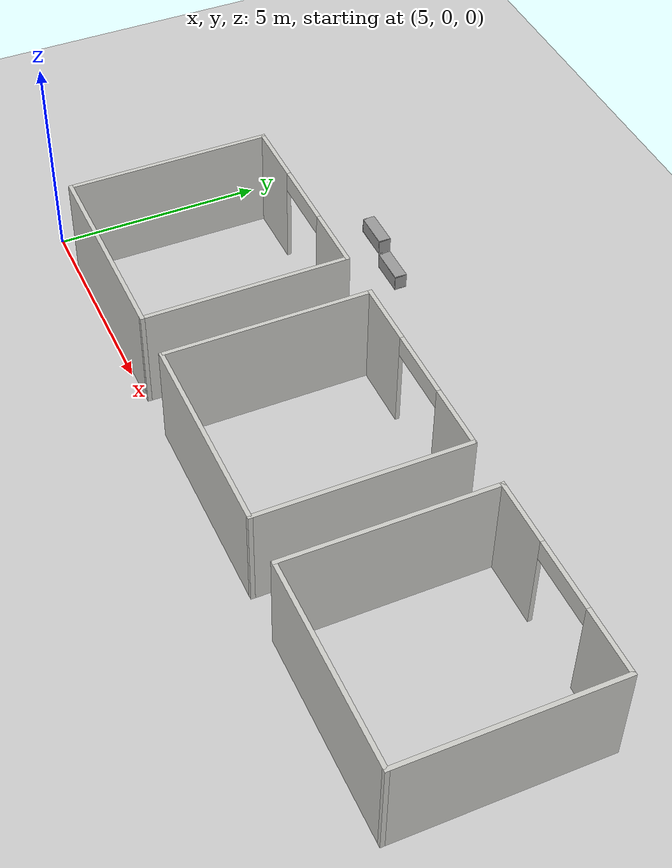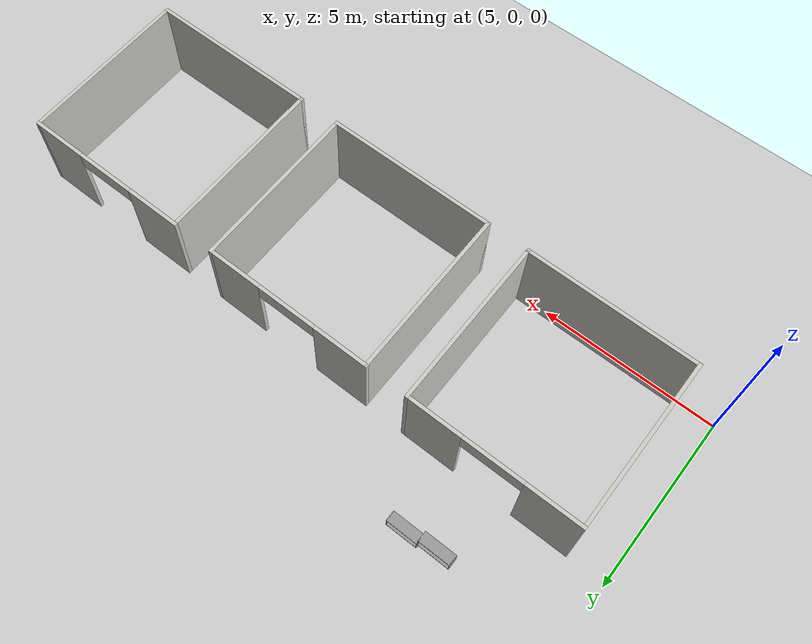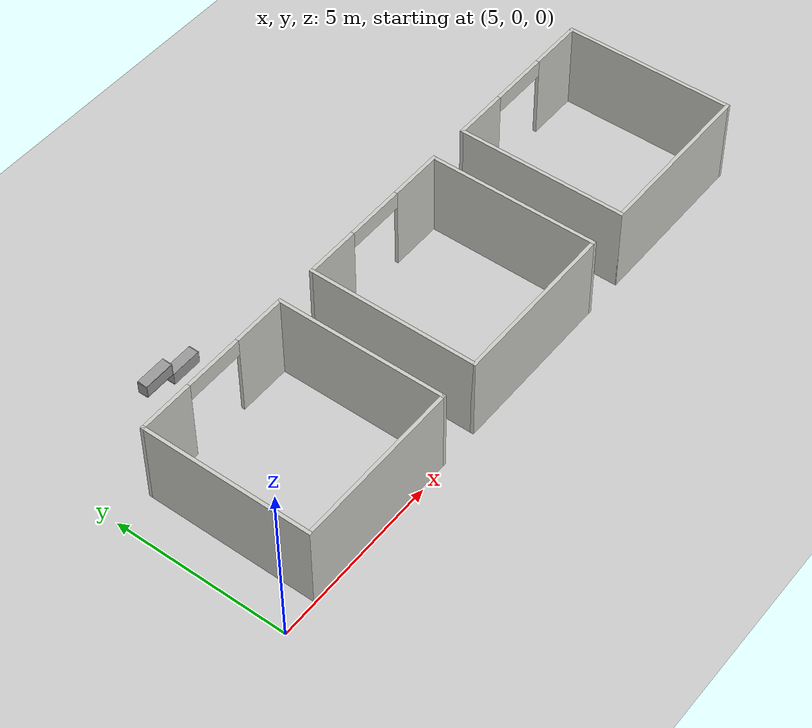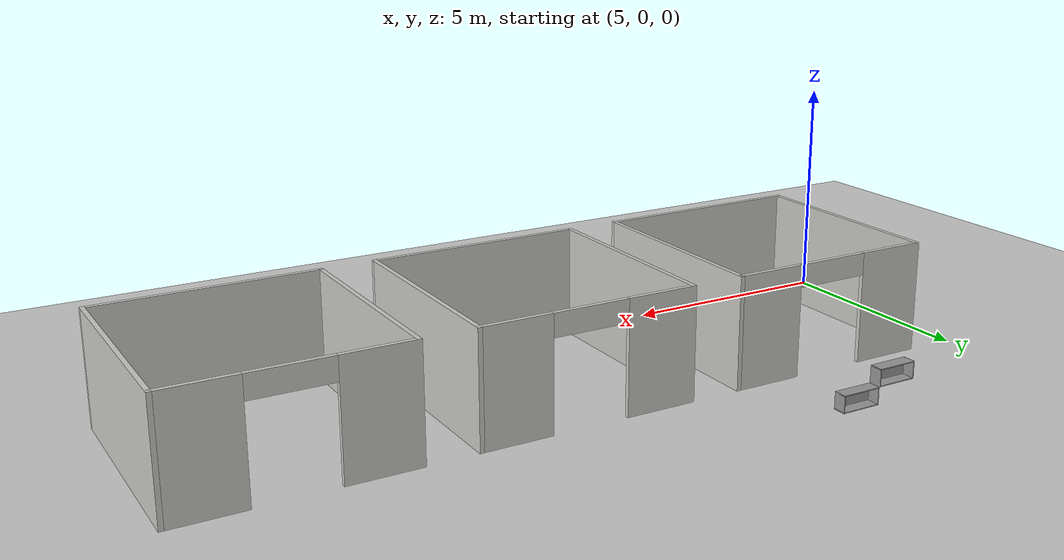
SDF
<sdf version="1.6">
 <world name="default">
  <model name="ground_plane">
   <static>1</static>
   <link name="link">
    <collision name="collision">
     <geometry><plane><normal>0 0 1</normal><size>100 100</size></plane></geometry>
     <surface><friction><ode><mu>100</mu><mu2>50</mu2></ode></friction></surface>
    </collision>
    <visual name="visual">
     <cast_shadows>0</cast_shadows>
     <geometry><plane><normal>0 0 1</normal><size>100 100</size></plane></geometry>
     <material>
      <script><uri>file://media/materials/scripts/gazebo.material</uri><name>Gazebo/Grey</name></script>
     </material>
    </visual>
   </link>
  </model>
  <model name="Wall_Cabinet_36x15W_1">
   <link name="Wall_0">
    <pose>0 0 0.01 0 -0 0</pose>
    <inertial>
     <mass>1.9796</mass>
     <inertia><ixx>0.0145</ixx><iyy>0.1511</iyy><izz>0.1367</izz><ixy>0</ixy><ixz>0</ixz><iyz>0</iyz></inertia>
    </inertial>
    <collision name="Wall_0_Collision"><geometry><box><size>0.91 0.296 0.02</size></box></geometry></collision>
    <visual name="Wall_0_Visual">
     <geometry><box><size>0.91 0.296 0.02</size></box></geometry>
     <material>
      <script><uri>file://media/materials/scripts/gazebo.material</uri><name>Gazebo/Grey</name></script>
      <ambient>1 1 1 1</ambient>
     </material>
    </visual>
   </link>
   <joint name="0_2" type="fixed">
    <pose>-0.455 0 0 0 -0 0</pose>
    <parent>Wall_2</parent>
    <child>Wall_0</child>
    <axis>
     <xyz>0 0 1</xyz>
     <use_parent_model_frame>0</use_parent_model_frame>
     <limit><lower>-1e+16</lower><upper>1e+16</upper></limit>
    </axis>
   </joint>
   <joint name="0_4" type="fixed">
    <pose>0.455 0 0 0 -0 0</pose>
    <parent>Wall_4</parent>
    <child>Wall_0</child>
    <axis>
     <xyz>0 0 1</xyz>
     <use_parent_model_frame>0</use_parent_model_frame>
     <limit><lower>-1e+16</lower><upper>1e+16</upper></limit>
    </axis>
   </joint>
   <joint name="0_8" type="fixed">
    <pose>0 -0.148 0 0 -0 0</pose>
    <parent>Wall_8</parent>
    <child>Wall_0</child>
    <axis>
     <xyz>0 0 1</xyz>
     <use_parent_model_frame>0</use_parent_model_frame>
     <limit><lower>-1e+16</lower><upper>1e+16</upper></limit>
    </axis>
   </joint>
   <link name="Wall_2">
    <pose>-0.445 0 0.192 0 -0 0</pose>
    <inertial>
     <mass>0.8353</mass>
     <inertia><ixx>0.0061</ixx><iyy>0.0164</iyy><izz>0.0103</izz><ixy>0</ixy><ixz>0</ixz><iyz>0</iyz></inertia>
    </inertial>
    <collision name="Wall_2_Collision"><geometry><box><size>0.02 0.296 0.384</size></box></geometry></collision>
    <visual name="Wall_2_Visual">
     <geometry><box><size>0.02 0.296 0.384</size></box></geometry>
     <material>
      <script><uri>file://media/materials/scripts/gazebo.material</uri><name>Gazebo/Grey</name></script>
      <ambient>1 1 1 1</ambient>
     </material>
    </visual>
   </link>
   <link name="Wall_4">
    <pose>0.445 0 0.192 0 -0 0</pose>
    <inertial>
     <mass>0.8353</mass>
     <inertia><ixx>0.0061</ixx><iyy>0.0164</iyy><izz>0.0103</izz><ixy>0</ixy><ixz>0</ixz><iyz>0</iyz></inertia>
    </inertial>
    <collision name="Wall_4_Collision"><geometry><box><size>0.02 0.296 0.384</size></box></geometry></collision>
    <visual name="Wall_4_Visual">
     <geometry><box><size>0.02 0.296 0.384</size></box></geometry>
     <material>
      <script><uri>file://media/materials/scripts/gazebo.material</uri><name>Gazebo/Grey</name></script>
      <ambient>1 1 1 1</ambient>
     </material>
    </visual>
   </link>
   <link name="Wall_6">
    <pose>0 0 0.374 0 -0 0</pose>
    <inertial>
     <mass>1.9796</mass>
     <inertia><ixx>0.0145</ixx><iyy>0.1511</iyy><izz>0.1367</izz><ixy>0</ixy><ixz>0</ixz><iyz>0</iyz></inertia>
    </inertial>
    <collision name="Wall_6_Collision"><geometry><box><size>0.91 0.296 0.02</size></box></geometry></collision>
    <visual name="Wall_6_Visual">
     <geometry><box><size>0.91 0.296 0.02</size></box></geometry>
     <material>
      <script><uri>file://media/materials/scripts/gazebo.material</uri><name>Gazebo/Grey</name></script>
      <ambient>1 1 1 1</ambient>
     </material>
    </visual>
   </link>
   <joint name="6_2" type="fixed">
    <pose>-0.455 0 0 0 -0 0</pose>
    <parent>Wall_2</parent>
    <child>Wall_6</child>
    <axis>
     <xyz>0 0 1</xyz>
     <use_parent_model_frame>0</use_parent_model_frame>
     <limit><lower>-1e+16</lower><upper>1e+16</upper></limit>
    </axis>
   </joint>
   <joint name="6_4" type="fixed">
    <pose>0.455 0 0 0 -0 0</pose>
    <parent>Wall_4</parent>
    <child>Wall_6</child>
    <axis>
     <xyz>0 0 1</xyz>
     <use_parent_model_frame>0</use_parent_model_frame>
     <limit><lower>-1e+16</lower><upper>1e+16</upper></limit>
    </axis>
   </joint>
   <joint name="6_8" type="fixed">
    <pose>0 -0.148 0 0 -0 0</pose>
    <parent>Wall_8</parent>
    <child>Wall_6</child>
    <axis>
     <xyz>0 0 1</xyz>
     <use_parent_model_frame>0</use_parent_model_frame>
     <limit><lower>-1e+16</lower><upper>1e+16</upper></limit>
    </axis>
   </joint>
   <link name="Wall_8">
    <pose>0 -0.138 0.19 0 -0 0</pose>
    <inertial>
     <mass>2.5302</mass>
     <inertia><ixx>0.0305</ixx><iyy>0.1732</iyy><izz>0.2035</izz><ixy>0</ixy><ixz>0</ixz><iyz>0</iyz></inertia>
    </inertial>
    <collision name="Wall_8_Collision"><geometry><box><size>0.906 0.02 0.38</size></box></geometry></collision>
    <visual name="Wall_8_Visual">
     <geometry><box><size>0.906 0.02 0.38</size></box></geometry>
     <material>
      <script><uri>file://media/materials/scripts/gazebo.material</uri><name>Gazebo/Grey</name></script>
      <ambient>1 1 1 1</ambient>
     </material>
    </visual>
   </link>
   <joint name="8_2" type="fixed">
    <pose>-0.453 0 0 0 -0 0</pose>
    <parent>Wall_2</parent>
    <child>Wall_8</child>
    <axis>
     <xyz>0 1 0</xyz>
     <use_parent_model_frame>0</use_parent_model_frame>
     <limit><lower>-1e+16</lower><upper>1e+16</upper></limit>
    </axis>
   </joint>
   <joint name="8_4" type="fixed">
    <pose>0.453 0 0 0 -0 0</pose>
    <parent>Wall_4</parent>
    <child>Wall_8</child>
    <axis>
     <xyz>0 1 0</xyz>
     <use_parent_model_frame>0</use_parent_model_frame>
     <limit><lower>-1e+16</lower><upper>1e+16</upper></limit>
    </axis>
   </joint>
   <static>1</static>
   <pose>9.37548 6.83772 0 0 -0 0</pose>
  </model>
  <model name="Wall_Cabinet_36x15W_3">
   <link name="Wall_0">
    <pose>0 0 0.01 0 -0 0</pose>
    <inertial>
     <mass>1.9796</mass>
     <inertia><ixx>0.0145</ixx><iyy>0.1511</iyy><izz>0.1367</izz><ixy>0</ixy><ixz>0</ixz><iyz>0</iyz></inertia>
    </inertial>
    <collision name="Wall_0_Collision"><geometry><box><size>0.91 0.296 0.02</size></box></geometry></collision>
    <visual name="Wall_0_Visual">
     <geometry><box><size>0.91 0.296 0.02</size></box></geometry>
     <material>
      <script><uri>file://media/materials/scripts/gazebo.material</uri><name>Gazebo/Grey</name></script>
      <ambient>1 1 1 1</ambient>
     </material>
    </visual>
   </link>
   <joint name="0_2" type="fixed">
    <pose>-0.455 0 0 0 -0 0</pose>
    <parent>Wall_2</parent>
    <child>Wall_0</child>
    <axis>
     <xyz>0 0 1</xyz>
     <use_parent_model_frame>0</use_parent_model_frame>
     <limit><lower>-1e+16</lower><upper>1e+16</upper></limit>
    </axis>
   </joint>
   <joint name="0_4" type="fixed">
    <pose>0.455 0 0 0 -0 0</pose>
    <parent>Wall_4</parent>
    <child>Wall_0</child>
    <axis>
     <xyz>0 0 1</xyz>
     <use_parent_model_frame>0</use_parent_model_frame>
     <limit><lower>-1e+16</lower><upper>1e+16</upper></limit>
    </axis>
   </joint>
   <joint name="0_8" type="fixed">
    <pose>0 -0.148 0 0 -0 0</pose>
    <parent>Wall_8</parent>
    <child>Wall_0</child>
    <axis>
     <xyz>0 0 1</xyz>
     <use_parent_model_frame>0</use_parent_model_frame>
     <limit><lower>-1e+16</lower><upper>1e+16</upper></limit>
    </axis>
   </joint>
   <link name="Wall_2">
    <pose>-0.445 0 0.192 0 -0 0</pose>
    <inertial>
     <mass>0.8353</mass>
     <inertia><ixx>0.0061</ixx><iyy>0.0164</iyy><izz>0.0103</izz><ixy>0</ixy><ixz>0</ixz><iyz>0</iyz></inertia>
    </inertial>
    <collision name="Wall_2_Collision"><geometry><box><size>0.02 0.296 0.384</size></box></geometry></collision>
    <visual name="Wall_2_Visual">
     <geometry><box><size>0.02 0.296 0.384</size></box></geometry>
     <material>
      <script><uri>file://media/materials/scripts/gazebo.material</uri><name>Gazebo/Grey</name></script>
      <ambient>1 1 1 1</ambient>
     </material>
    </visual>
   </link>
   <link name="Wall_4">
    <pose>0.445 0 0.192 0 -0 0</pose>
    <inertial>
     <mass>0.8353</mass>
     <inertia><ixx>0.0061</ixx><iyy>0.0164</iyy><izz>0.0103</izz><ixy>0</ixy><ixz>0</ixz><iyz>0</iyz></inertia>
    </inertial>
    <collision name="Wall_4_Collision"><geometry><box><size>0.02 0.296 0.384</size></box></geometry></collision>
    <visual name="Wall_4_Visual">
     <geometry><box><size>0.02 0.296 0.384</size></box></geometry>
     <material>
      <script><uri>file://media/materials/scripts/gazebo.material</uri><name>Gazebo/Grey</name></script>
      <ambient>1 1 1 1</ambient>
     </material>
    </visual>
   </link>
   <link name="Wall_6">
    <pose>0 0 0.374 0 -0 0</pose>
    <inertial>
     <mass>1.9796</mass>
     <inertia><ixx>0.0145</ixx><iyy>0.1511</iyy><izz>0.1367</izz><ixy>0</ixy><ixz>0</ixz><iyz>0</iyz></inertia>
    </inertial>
    <collision name="Wall_6_Collision"><geometry><box><size>0.91 0.296 0.02</size></box></geometry></collision>
    <visual name="Wall_6_Visual">
     <geometry><box><size>0.91 0.296 0.02</size></box></geometry>
     <material>
      <script><uri>file://media/materials/scripts/gazebo.material</uri><name>Gazebo/Grey</name></script>
      <ambient>1 1 1 1</ambient>
     </material>
    </visual>
   </link>
   <joint name="6_2" type="fixed">
    <pose>-0.455 0 0 0 -0 0</pose>
    <parent>Wall_2</parent>
    <child>Wall_6</child>
    <axis>
     <xyz>0 0 1</xyz>
     <use_parent_model_frame>0</use_parent_model_frame>
     <limit><lower>-1e+16</lower><upper>1e+16</upper></limit>
    </axis>
   </joint>
   <joint name="6_4" type="fixed">
    <pose>0.455 0 0 0 -0 0</pose>
    <parent>Wall_4</parent>
    <child>Wall_6</child>
    <axis>
     <xyz>0 0 1</xyz>
     <use_parent_model_frame>0</use_parent_model_frame>
     <limit><lower>-1e+16</lower><upper>1e+16</upper></limit>
    </axis>
   </joint>
   <joint name="6_8" type="fixed">
    <pose>0 -0.148 0 0 -0 0</pose>
    <parent>Wall_8</parent>
    <child>Wall_6</child>
    <axis>
     <xyz>0 0 1</xyz>
     <use_parent_model_frame>0</use_parent_model_frame>
     <limit><lower>-1e+16</lower><upper>1e+16</upper></limit>
    </axis>
   </joint>
   <link name="Wall_8">
    <pose>0 -0.138 0.19 0 -0 0</pose>
    <inertial>
     <mass>2.5302</mass>
     <inertia><ixx>0.0305</ixx><iyy>0.1732</iyy><izz>0.2035</izz><ixy>0</ixy><ixz>0</ixz><iyz>0</iyz></inertia>
    </inertial>
    <collision name="Wall_8_Collision"><geometry><box><size>0.906 0.02 0.38</size></box></geometry></collision>
    <visual name="Wall_8_Visual">
     <geometry><box><size>0.906 0.02 0.38</size></box></geometry>
     <material>
      <script><uri>file://media/materials/scripts/gazebo.material</uri><name>Gazebo/Grey</name></script>
      <ambient>1 1 1 1</ambient>
     </material>
    </visual>
   </link>
   <joint name="8_2" type="fixed">
    <pose>-0.453 0 0 0 -0 0</pose>
    <parent>Wall_2</parent>
    <child>Wall_8</child>
    <axis>
     <xyz>0 1 0</xyz>
     <use_parent_model_frame>0</use_parent_model_frame>
     <limit><lower>-1e+16</lower><upper>1e+16</upper></limit>
    </axis>
   </joint>
   <joint name="8_4" type="fixed">
    <pose>0.453 0 0 0 -0 0</pose>
    <parent>Wall_4</parent>
    <child>Wall_8</child>
    <axis>
     <xyz>0 1 0</xyz>
     <use_parent_model_frame>0</use_parent_model_frame>
     <limit><lower>-1e+16</lower><upper>1e+16</upper></limit>
    </axis>
   </joint>
   <static>1</static>
   <pose>8.45583 6.84176 0.387838 0 -0 0</pose>
  </model>
  <model name="room_wall_6">
   <pose>20.5 2.50001 0 0 -0 1.5708</pose>
   <link name="Wall_21">
    <collision name="Wall_21_Collision">
     <geometry><box><size>4.9 0.1 2.5</size></box></geometry>
     <pose>0 0 1.25 0 -0 0</pose>
    </collision>
    <visual name="Wall_21_Visual">
     <pose>0 0 1.25 0 -0 0</pose>
     <geometry><box><size>4.9 0.1 2.5</size></box></geometry>
     <material>
      <script><uri>file://media/materials/scripts/gazebo.material</uri><name>Gazebo/CeilingTiled</name></script>
      <ambient>1 0.764706 0.305882 1</ambient>
     </material>
     <meta><layer>0</layer></meta>
    </visual>
    <pose>0 2.4 0 0 -0 0</pose>
   </link>
   <link name="Wall_22">
    <pose>2.4 0 0 0 0 -1.5708</pose>
    <visual name="Wall_22_Visual_0">
     <pose>-1.64961 0 1.25 0 -0 0</pose>
     <geometry><box><size>1.60079 0.1 2.5</size></box></geometry>
     <material>
      <script><uri>file://media/materials/scripts/gazebo.material</uri><name>Gazebo/CeilingTiled</name></script>
      <ambient>1 0.764706 0.305882 1</ambient>
     </material>
     <meta><layer>0</layer></meta>
    </visual>
    <collision name="Wall_22_Collision_0">
     <geometry><box><size>1.60079 0.1 2.5</size></box></geometry>
     <pose>-1.64961 0 1.25 0 -0 0</pose>
    </collision>
    <visual name="Wall_22_Visual_1">
     <pose>1.65039 0 1.25 0 -0 0</pose>
     <geometry><box><size>1.59921 0.1 2.5</size></box></geometry>
     <material>
      <script><uri>file://media/materials/scripts/gazebo.material</uri><name>Gazebo/CeilingTiled</name></script>
      <ambient>1 0.764706 0.305882 1</ambient>
     </material>
     <meta><layer>0</layer></meta>
    </visual>
    <collision name="Wall_22_Collision_1">
     <geometry><box><size>1.59921 0.1 2.5</size></box></geometry>
     <pose>1.65039 0 1.25 0 -0 0</pose>
    </collision>
    <visual name="Wall_22_Visual_2">
     <pose>0.000786 0 2.25 0 -0 0</pose>
     <geometry><box><size>1.7 0.1 0.5</size></box></geometry>
     <material>
      <script><uri>file://media/materials/scripts/gazebo.material</uri><name>Gazebo/CeilingTiled</name></script>
      <ambient>1 0.764706 0.305882 1</ambient>
     </material>
     <meta><layer>0</layer></meta>
    </visual>
    <collision name="Wall_22_Collision_2">
     <geometry><box><size>1.7 0.1 0.5</size></box></geometry>
     <pose>0.000786 0 2.25 0 -0 0</pose>
    </collision>
   </link>
   <link name="Wall_23">
    <collision name="Wall_23_Collision">
     <geometry><box><size>4.9 0.1 2.5</size></box></geometry>
     <pose>0 0 1.25 0 -0 0</pose>
    </collision>
    <visual name="Wall_23_Visual">
     <pose>0 0 1.25 0 -0 0</pose>
     <geometry><box><size>4.9 0.1 2.5</size></box></geometry>
     <material>
      <script><uri>file://media/materials/scripts/gazebo.material</uri><name>Gazebo/CeilingTiled</name></script>
      <ambient>1 0.764706 0.305882 1</ambient>
     </material>
     <meta><layer>0</layer></meta>
    </visual>
    <pose>0 -2.4 0 0 -0 3.14159</pose>
   </link>
   <link name="Wall_24">
    <collision name="Wall_24_Collision">
     <geometry><box><size>4.9 0.1 2.5</size></box></geometry>
     <pose>0 0 1.25 0 -0 0</pose>
    </collision>
    <visual name="Wall_24_Visual">
     <pose>0 0 1.25 0 -0 0</pose>
     <geometry><box><size>4.9 0.1 2.5</size></box></geometry>
     <material>
      <script><uri>file://media/materials/scripts/gazebo.material</uri><name>Gazebo/CeilingTiled</name></script>
      <ambient>1 0.764706 0.305882 1</ambient>
     </material>
     <meta><layer>0</layer></meta>
    </visual>
    <pose>-2.4 0 0 0 -0 1.5708</pose>
   </link>
   <static>1</static>
  </model>
  <model name="room_wall_7">
   <pose>8.5 2.5 0 0 -0 1.57079</pose>
   <link name="Wall_21">
    <collision name="Wall_21_Collision">
     <geometry><box><size>4.9 0.1 2.5</size></box></geometry>
     <pose>0 0 1.25 0 -0 0</pose>
    </collision>
    <visual name="Wall_21_Visual">
     <pose>0 0 1.25 0 -0 0</pose>
     <geometry><box><size>4.9 0.1 2.5</size></box></geometry>
     <material>
      <script><uri>file://media/materials/scripts/gazebo.material</uri><name>Gazebo/CeilingTiled</name></script>
      <ambient>1 0.764706 0.305882 1</ambient>
     </material>
     <meta><layer>0</layer></meta>
    </visual>
    <pose>0 2.4 0 0 -0 0</pose>
   </link>
   <link name="Wall_22">
    <pose>2.4 0 0 0 0 -1.5708</pose>
    <visual name="Wall_22_Visual_0">
     <pose>-1.64961 0 1.25 0 -0 0</pose>
     <geometry><box><size>1.60079 0.1 2.5</size></box></geometry>
     <material>
      <script><uri>file://media/materials/scripts/gazebo.material</uri><name>Gazebo/CeilingTiled</name></script>
      <ambient>1 0.764706 0.305882 1</ambient>
     </material>
     <meta><layer>0</layer></meta>
    </visual>
    <collision name="Wall_22_Collision_0">
     <geometry><box><size>1.60079 0.1 2.5</size></box></geometry>
     <pose>-1.64961 0 1.25 0 -0 0</pose>
    </collision>
    <visual name="Wall_22_Visual_1">
     <pose>1.65039 0 1.25 0 -0 0</pose>
     <geometry><box><size>1.59921 0.1 2.5</size></box></geometry>
     <material>
      <script><uri>file://media/materials/scripts/gazebo.material</uri><name>Gazebo/CeilingTiled</name></script>
      <ambient>1 0.764706 0.305882 1</ambient>
     </material>
     <meta><layer>0</layer></meta>
    </visual>
    <collision name="Wall_22_Collision_1">
     <geometry><box><size>1.59921 0.1 2.5</size></box></geometry>
     <pose>1.65039 0 1.25 0 -0 0</pose>
    </collision>
    <visual name="Wall_22_Visual_2">
     <pose>0.000786 0 2.25 0 -0 0</pose>
     <geometry><box><size>1.7 0.1 0.5</size></box></geometry>
     <material>
      <script><uri>file://media/materials/scripts/gazebo.material</uri><name>Gazebo/CeilingTiled</name></script>
      <ambient>1 0.764706 0.305882 1</ambient>
     </material>
     <meta><layer>0</layer></meta>
    </visual>
    <collision name="Wall_22_Collision_2">
     <geometry><box><size>1.7 0.1 0.5</size></box></geometry>
     <pose>0.000786 0 2.25 0 -0 0</pose>
    </collision>
   </link>
   <link name="Wall_23">
    <collision name="Wall_23_Collision">
     <geometry><box><size>4.9 0.1 2.5</size></box></geometry>
     <pose>0 0 1.25 0 -0 0</pose>
    </collision>
    <visual name="Wall_23_Visual">
     <pose>0 0 1.25 0 -0 0</pose>
     <geometry><box><size>4.9 0.1 2.5</size></box></geometry>
     <material>
      <script><uri>file://media/materials/scripts/gazebo.material</uri><name>Gazebo/CeilingTiled</name></script>
      <ambient>1 0.764706 0.305882 1</ambient>
     </material>
     <meta><layer>0</layer></meta>
    </visual>
    <pose>0 -2.4 0 0 -0 3.14159</pose>
   </link>
   <link name="Wall_24">
    <collision name="Wall_24_Collision">
     <geometry><box><size>4.9 0.1 2.5</size></box></geometry>
     <pose>0 0 1.25 0 -0 0</pose>
    </collision>
    <visual name="Wall_24_Visual">
     <pose>0 0 1.25 0 -0 0</pose>
     <geometry><box><size>4.9 0.1 2.5</size></box></geometry>
     <material>
      <script><uri>file://media/materials/scripts/gazebo.material</uri><name>Gazebo/CeilingTiled</name></script>
      <ambient>1 0.764706 0.305882 1</ambient>
     </material>
     <meta><layer>0</layer></meta>
    </visual>
    <pose>-2.4 0 0 0 -0 1.5708</pose>
   </link>
   <static>1</static>
  </model>
  <model name="room_wall_8">
   <pose>14.5 2.50001 0 0 -0 1.5708</pose>
   <link name="Wall_21">
    <collision name="Wall_21_Collision">
     <geometry><box><size>4.9 0.1 2.5</size></box></geometry>
     <pose>0 0 1.25 0 -0 0</pose>
    </collision>
    <visual name="Wall_21_Visual">
     <pose>0 0 1.25 0 -0 0</pose>
     <geometry><box><size>4.9 0.1 2.5</size></box></geometry>
     <material>
      <script><uri>file://media/materials/scripts/gazebo.material</uri><name>Gazebo/CeilingTiled</name></script>
      <ambient>1 0.764706 0.305882 1</ambient>
     </material>
     <meta><layer>0</layer></meta>
    </visual>
    <pose>0 2.4 0 0 -0 0</pose>
   </link>
   <link name="Wall_22">
    <pose>2.4 0 0 0 0 -1.5708</pose>
    <visual name="Wall_22_Visual_0">
     <pose>-1.64961 0 1.25 0 -0 0</pose>
     <geometry><box><size>1.60079 0.1 2.5</size></box></geometry>
     <material>
      <script><uri>file://media/materials/scripts/gazebo.material</uri><name>Gazebo/CeilingTiled</name></script>
      <ambient>1 0.764706 0.305882 1</ambient>
     </material>
     <meta><layer>0</layer></meta>
    </visual>
    <collision name="Wall_22_Collision_0">
     <geometry><box><size>1.60079 0.1 2.5</size></box></geometry>
     <pose>-1.64961 0 1.25 0 -0 0</pose>
    </collision>
    <visual name="Wall_22_Visual_1">
     <pose>1.65039 0 1.25 0 -0 0</pose>
     <geometry><box><size>1.59921 0.1 2.5</size></box></geometry>
     <material>
      <script><uri>file://media/materials/scripts/gazebo.material</uri><name>Gazebo/CeilingTiled</name></script>
      <ambient>1 0.764706 0.305882 1</ambient>
     </material>
     <meta><layer>0</layer></meta>
    </visual>
    <collision name="Wall_22_Collision_1">
     <geometry><box><size>1.59921 0.1 2.5</size></box></geometry>
     <pose>1.65039 0 1.25 0 -0 0</pose>
    </collision>
    <visual name="Wall_22_Visual_2">
     <pose>0.000786 0 2.25 0 -0 0</pose>
     <geometry><box><size>1.7 0.1 0.5</size></box></geometry>
     <material>
      <script><uri>file://media/materials/scripts/gazebo.material</uri><name>Gazebo/CeilingTiled</name></script>
      <ambient>1 0.764706 0.305882 1</ambient>
     </material>
     <meta><layer>0</layer></meta>
    </visual>
    <collision name="Wall_22_Collision_2">
     <geometry><box><size>1.7 0.1 0.5</size></box></geometry>
     <pose>0.000786 0 2.25 0 -0 0</pose>
    </collision>
   </link>
   <link name="Wall_23">
    <collision name="Wall_23_Collision">
     <geometry><box><size>4.9 0.1 2.5</size></box></geometry>
     <pose>0 0 1.25 0 -0 0</pose>
    </collision>
    <visual name="Wall_23_Visual">
     <pose>0 0 1.25 0 -0 0</pose>
     <geometry><box><size>4.9 0.1 2.5</size></box></geometry>
     <material>
      <script><uri>file://media/materials/scripts/gazebo.material</uri><name>Gazebo/CeilingTiled</name></script>
      <ambient>1 0.764706 0.305882 1</ambient>
     </material>
     <meta><layer>0</layer></meta>
    </visual>
    <pose>0 -2.4 0 0 -0 3.14159</pose>
   </link>
   <link name="Wall_24">
    <collision name="Wall_24_Collision">
     <geometry><box><size>4.9 0.1 2.5</size></box></geometry>
     <pose>0 0 1.25 0 -0 0</pose>
    </collision>
    <visual name="Wall_24_Visual">
     <pose>0 0 1.25 0 -0 0</pose>
     <geometry><box><size>4.9 0.1 2.5</size></box></geometry>
     <material>
      <script><uri>file://media/materials/scripts/gazebo.material</uri><name>Gazebo/CeilingTiled</name></script>
      <ambient>1 0.764706 0.305882 1</ambient>
     </material>
     <meta><layer>0</layer></meta>
    </visual>
    <pose>-2.4 0 0 0 -0 1.5708</pose>
   </link>
   <static>1</static>
  </model>
 </world>
</sdf>
